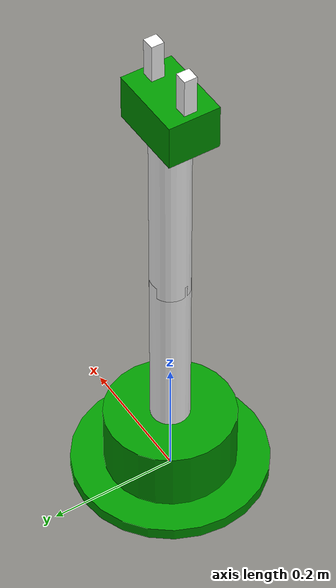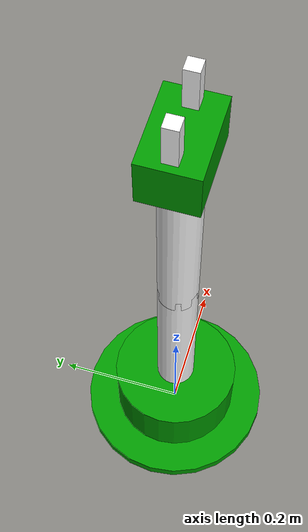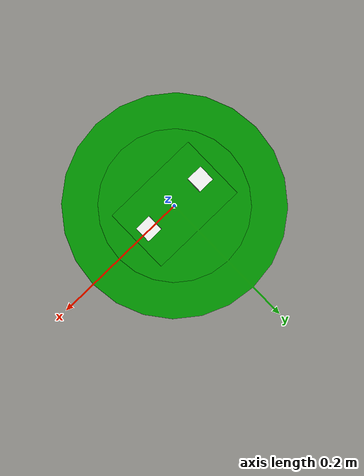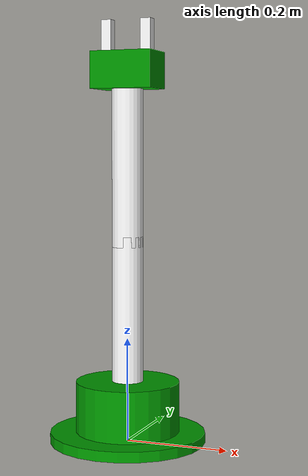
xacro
<?xml version="1.0"?>
<robot xmlns:xacro="http://www.ros.org/wiki/xacro" name="rr_robotic_arm">

    <xacro:include filename="$(find rr_robotic_arm)/urdf/robot_gazebo.xacro"/>
    <xacro:include filename="$(find rr_robotic_arm)/urdf/robot_ros2_control.xacro"/>

    <xacro:macro name="default_inertial" params="mass">
        <inertial>
            <mass value="1.0"/>
            <inertia ixx="1.0" ixy="0.0" ixz="0.0" iyy="1.0" iyz="0.0" izz="1.0"/>
        </inertial>
    </xacro:macro>

    <material name="white">
        <color rgba="1.0 1.0 1.0 1.0"/>
    </material>

    <material name="green">
        <color rgba="0.0 0.6 0.0 1.0"/>
    </material>

    <link name="base_link">
        <visual>
            <geometry>
                <cylinder radius="0.15" length="0.02"/>
            </geometry>
            <material name="green"/>
            <origin xyz="0.0 0.0 0.01" rpy="0.0 0.0 0.0"/>
        </visual>
        <collision>
            <geometry>
                <cylinder radius="0.15" length="0.02"/>
            </geometry>
            <material name="green"/>
            <origin xyz="0.0 0.0 0.01" rpy="0.0 0.0 0.0"/>
        </collision>
        <xacro:default_inertial mass="1"/>
    </link>

    <link name="link1">
        <visual>
            <geometry>
                <cylinder radius="0.1" length="0.1"/>
            </geometry>
            <material name="green"/>
            <origin xyz="0.0 0.0 0.05" rpy="0.0 0.0 0.0"/>
        </visual>
        <collision>
            <geometry>
                <cylinder radius="0.1" length="0.1"/>
            </geometry>
            <material name="green"/>
            <origin xyz="0.0 0.0 0.05" rpy="0.0 0.0 0.0"/>
        </collision>
        <xacro:default_inertial mass="1"/>
    </link>

    <link name="link2">
        <visual>
            <geometry>
                <cylinder radius="0.03" length="0.3"/>
            </geometry>
            <material name="white"/>
            <origin xyz="0.0 0.0 0.15" rpy="0.0 0.0 0.0"/>
        </visual>
        <collision>
            <geometry>
                <cylinder radius="0.03" length="0.3"/>
            </geometry>
            <material name="white"/>
            <origin xyz="0.0 0.0 0.15" rpy="0.0 0.0 0.0"/>
        </collision>
        <xacro:default_inertial mass="1"/>
    </link>

    <link name="link3">
        <visual>
            <geometry>
                <cylinder radius="0.03" length="0.3"/>
            </geometry>
            <material name="white"/>
            <origin xyz="0.0 0.0 0.15" rpy="0.0 0.0 0.0"/>
        </visual>
        <collision>
            <geometry>
                <cylinder radius="0.03" length="0.3"/>
            </geometry>
            <material name="white"/>
            <origin xyz="0.0 0.0 0.15" rpy="0.0 0.0 0.0"/>
        </collision>
        <xacro:default_inertial mass="1"/>
    </link>

    <link name="wrist">
        <visual>
            <geometry>
                <box size="0.12 0.08 0.07"/>
            </geometry>
            <material name="green"/>
            <origin xyz="0.0 0.0 0.035" rpy="0.0 0.0 0.0"/>
        </visual>
        <collision>
            <geometry>
                <box size="0.12 0.08 0.07"/>
            </geometry>
            <material name="green"/>
            <origin xyz="0.0 0.0 0.035" rpy="0.0 0.0 0.0"/>
        </collision>
        <xacro:default_inertial mass="1"/>
    </link>

    <link name="finger_1">
        <visual>
            <geometry>
                <box size="0.02 0.02 0.07"/>
            </geometry>
            <material name="white"/>
            <origin xyz="0.0 0.0 0.025" rpy="0.0 0.0 0.0"/>
        </visual>
        <collision>
            <geometry>
                <box size="0.02 0.02 0.07"/>
            </geometry>
            <material name="white"/>
            <origin xyz="0.0 0.0 0.025" rpy="0.0 0.0 0.0"/>
        </collision>
        <xacro:default_inertial mass="1"/>
    </link>

    <link name="finger_2">
        <visual>
            <geometry>
                <box size="0.02 0.02 0.07"/>
            </geometry>
            <material name="white"/>
            <origin xyz="0.0 0.0 0.025" rpy="0.0 0.0 0.0"/>
        </visual>
        <collision>
            <geometry>
                <box size="0.02 0.02 0.07"/>
            </geometry>
            <material name="white"/>
            <origin xyz="0.0 0.0 0.025" rpy="0.0 0.0 0.0"/>
        </collision>
        <xacro:default_inertial mass="1"/>
    </link>

    <joint name="joint1" type="revolute">
        <origin xyz="0.0 0.0 0.018" rpy="0.0 0.0 0.0"/>
        <parent link="base_link"/>
        <child link="link1"/>
        <axis xyz="0.0 0.0 1.0"/>
        <limit lower="-1.57" upper="1.57" effort="100.0" velocity="1"/>
    </joint>

    <joint name="joint2" type="fixed">
        <origin xyz="0.0 0.0 0.08" rpy="0.0 0.0 0.0"/>
        <parent link="link1"/>
        <child link="link2"/>
        <axis xyz="0.0 1.0 0.0"/>
    </joint>

    <joint name="joint3" type="revolute">
        <origin xyz="0.0 0.0 0.28" rpy="0.0 0.0 0.0"/>
        <parent link="link2"/>
        <child link="link3"/>
        <axis xyz="1.0 0.0 0.0"/>
        <limit lower="-1.57" upper="1.57" effort="100.0" velocity="1"/>
    </joint>

    <joint name="joint4" type="fixed">
        <origin xyz="0.0 0.0 0.3" rpy="0.0 0.0 0.0"/>
        <parent link="link3"/>
        <child link="wrist"/>
        <axis xyz="0.0 1.0 0.0"/>
    </joint>

    <joint name="finger_joint1" type="prismatic">
        <origin xyz="-0.04 0.0 0.07" rpy="0.0 0.0 0.0"/>
        <parent link="wrist"/>
        <child link="finger_1"/>
        <axis xyz="1.0 0.0 0.0"/>
        <limit lower="0.0" upper="0.03" effort="100.0" velocity="1"/>
    </joint>

    <joint name="finger_joint2" type="prismatic">
        <origin xyz="0.04 0.0 0.07" rpy="0.0 0.0 0.0"/>
        <parent link="wrist"/>
        <child link="finger_2"/>
        <axis xyz="1.0 0.0 0.0"/>
        <limit lower="-0.03" upper="0.0" effort="100.0" velocity="1"/>
    </joint>

    <gazebo reference="base_link">
        <material>Gazebo/Green</material>
    </gazebo>

    <gazebo reference="link1">
        <material>Gazebo/Green</material>
    </gazebo>

    <gazebo reference="link2">
        <material>Gazebo/White</material>
    </gazebo>

    <gazebo reference="link3">
        <material>Gazebo/White</material>
    </gazebo>

    <gazebo reference="wrist">
        <material>Gazebo/Green</material>
    </gazebo>

    <gazebo reference="finger_1">
        <material>Gazebo/White</material>
    </gazebo>

    <gazebo reference="finger_2">
        <material>Gazebo/White</material>
    </gazebo>

    <!-- Transmission for joint1 -->
    <transmission name="joint1_trans">
    <type>transmission_interface/SimpleTransmission</type>
    <joint name="joint1">
        <hardwareInterface>hardware_interface/PositionJointInterface</hardwareInterface>
    </joint>
    <actuator name="joint1_motor">
        <mechanicalReduction>1</mechanicalReduction>
    </actuator>
    </transmission>

    <!-- Transmission for joint3 -->
    <transmission name="joint3_trans">
    <type>transmission_interface/SimpleTransmission</type>
    <joint name="joint3">
        <hardwareInterface>hardware_interface/PositionJointInterface</hardwareInterface>
    </joint>
    <actuator name="joint3_motor">
        <mechanicalReduction>1</mechanicalReduction>
    </actuator>
    </transmission>

    <!-- Transmission for finger_joint1 -->
    <transmission name="finger_joint1_trans">
    <type>transmission_interface/SimpleTransmission</type>
    <joint name="finger_joint1">
        <hardwareInterface>hardware_interface/PositionJointInterface</hardwareInterface>
    </joint>
    <actuator name="finger_joint1_motor">
        <mechanicalReduction>1</mechanicalReduction>
    </actuator>
    </transmission>

    <!-- Transmission for finger_joint2 -->
    <transmission name="finger_joint2_trans">
    <type>transmission_interface/SimpleTransmission</type>
    <joint name="finger_joint2">
        <hardwareInterface>hardware_interface/PositionJointInterface</hardwareInterface>
    </joint>
    <actuator name="finger_joint2_motor">
        <mechanicalReduction>1</mechanicalReduction>
    </actuator>
    </transmission>

</robot>
